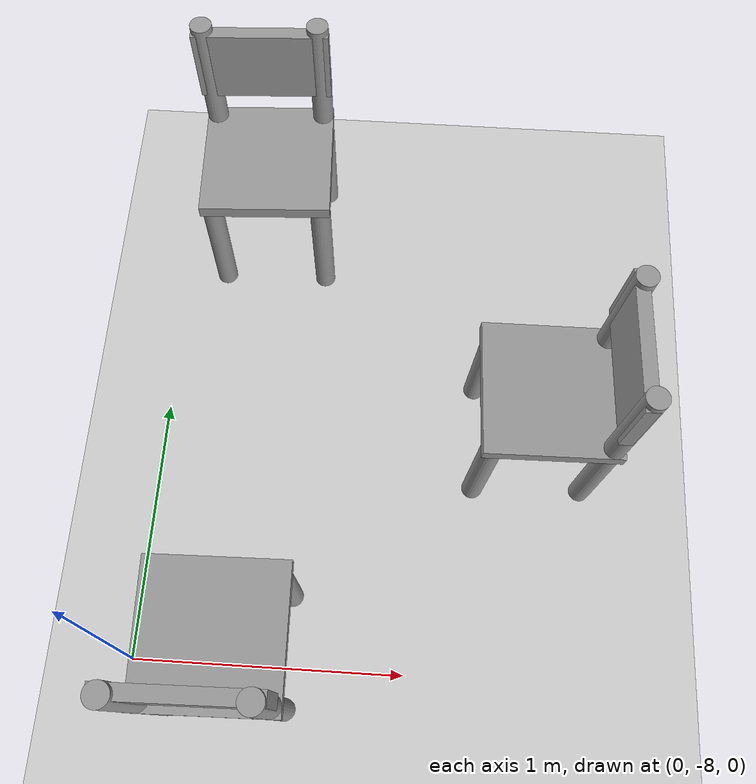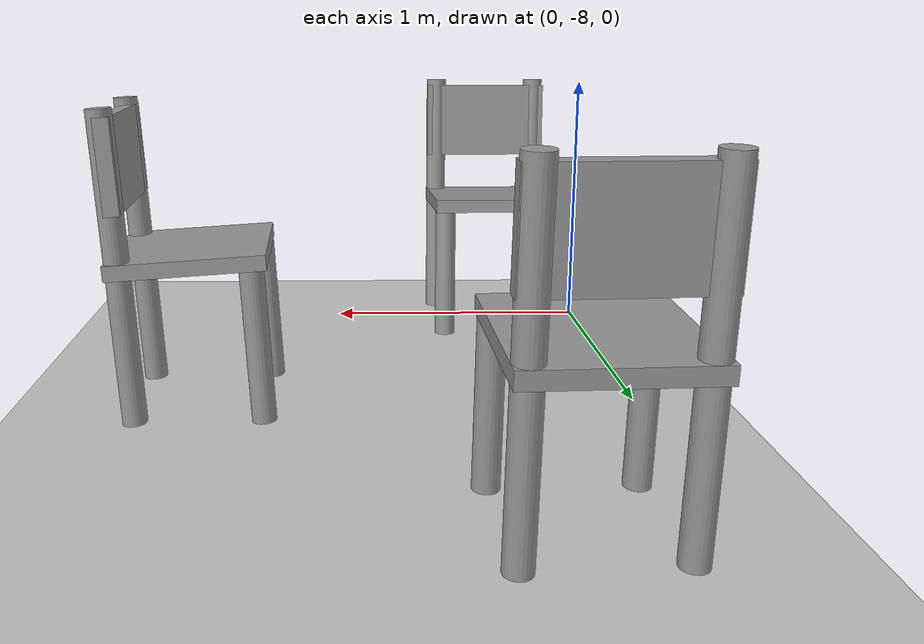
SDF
<sdf version="1.6">
 <world name="default">
  <model name="ground_plane">
   <static>1</static>
   <link name="link">
    <collision name="collision">
     <geometry><plane><normal>0 0 1</normal><size>100 100</size></plane></geometry>
     <surface><friction><ode><mu>100</mu><mu2>50</mu2></ode></friction></surface>
    </collision>
    <visual name="visual">
     <cast_shadows>0</cast_shadows>
     <geometry><plane><normal>0 0 1</normal><size>100 100</size></plane></geometry>
     <material>
      <script><uri>file://media/materials/scripts/gazebo.material</uri><name>Gazebo/Grey</name></script>
     </material>
    </visual>
   </link>
  </model>
  <model name="chair_clone">
   <link name="link_2">
    <pose>0.235 -0.21 -0.2375 0 -0 0</pose>
    <inertial>
     <mass>1</mass>
     <inertia><ixx>0.145833</ixx><ixy>0</ixy><ixz>0</ixz><iyy>0.145833</iyy><iyz>0</iyz><izz>0.125</izz></inertia>
    </inertial>
    <visual name="visual">
     <geometry><cylinder><radius>0.04</radius><length>0.5</length></cylinder></geometry>
     <material>
      <lighting>1</lighting>
      <script><uri>file://media/materials/scripts/gazebo.material</uri><name>Gazebo/Grey</name></script>
      <shader type="pixel"><normal_map>__default__</normal_map></shader>
      <ambient>0.3 0.3 0.3 1</ambient>
      <diffuse>0.7 0.7 0.7 1</diffuse>
      <specular>0.01 0.01 0.01 1</specular>
      <emissive>0 0 0 1</emissive>
     </material>
    </visual>
    <collision name="collision">
     <geometry><cylinder><radius>0.04</radius><length>0.5</length></cylinder></geometry>
     <surface>
      <friction>
       <ode><mu>1</mu><mu2>1</mu2><fdir1>0 0 0</fdir1><slip1>0</slip1><slip2>0</slip2></ode>
       <torsional>
        <coefficient>1</coefficient>
        <patch_radius>0</patch_radius>
        <surface_radius>0</surface_radius>
        <use_patch_radius>1</use_patch_radius>
        <ode><slip>0</slip></ode>
       </torsional>
      </friction>
      <bounce><restitution_coefficient>0</restitution_coefficient><threshold>1e+06</threshold></bounce>
      <contact>
       <collide_without_contact>0</collide_without_contact>
       <collide_without_contact_bitmask>1</collide_without_contact_bitmask>
       <collide_bitmask>1</collide_bitmask>
       <ode>
        <soft_cfm>0</soft_cfm>
        <soft_erp>0.2</soft_erp>
        <kp>1e+13</kp>
        <kd>1</kd>
        <max_vel>0.01</max_vel>
        <min_depth>0</min_depth>
       </ode>
       <bullet>
        <split_impulse>1</split_impulse>
        <split_impulse_penetration_threshold>-0.01</split_impulse_penetration_threshold>
        <soft_cfm>0</soft_cfm>
        <soft_erp>0.2</soft_erp>
        <kp>1e+13</kp>
        <kd>1</kd>
       </bullet>
      </contact>
     </surface>
    </collision>
   </link>
   <link name="link_2_clone">
    <pose>0.245 0.21 -0.2375 0 -0 0</pose>
    <inertial>
     <mass>1</mass>
     <inertia><ixx>0.145833</ixx><ixy>0</ixy><ixz>0</ixz><iyy>0.145833</iyy><iyz>0</iyz><izz>0.125</izz></inertia>
    </inertial>
    <visual name="visual">
     <geometry><cylinder><radius>0.04</radius><length>0.5</length></cylinder></geometry>
     <material>
      <lighting>1</lighting>
      <script><uri>file://media/materials/scripts/gazebo.material</uri><name>Gazebo/Grey</name></script>
      <shader type="pixel"><normal_map>__default__</normal_map></shader>
      <ambient>0.3 0.3 0.3 1</ambient>
      <diffuse>0.7 0.7 0.7 1</diffuse>
      <specular>0.01 0.01 0.01 1</specular>
      <emissive>0 0 0 1</emissive>
     </material>
    </visual>
    <collision name="collision">
     <geometry><cylinder><radius>0.04</radius><length>0.5</length></cylinder></geometry>
     <surface>
      <friction>
       <ode><mu>1</mu><mu2>1</mu2><fdir1>0 0 0</fdir1><slip1>0</slip1><slip2>0</slip2></ode>
       <torsional>
        <coefficient>1</coefficient>
        <patch_radius>0</patch_radius>
        <surface_radius>0</surface_radius>
        <use_patch_radius>1</use_patch_radius>
        <ode><slip>0</slip></ode>
       </torsional>
      </friction>
      <bounce><restitution_coefficient>0</restitution_coefficient><threshold>1e+06</threshold></bounce>
      <contact>
       <collide_without_contact>0</collide_without_contact>
       <collide_without_contact_bitmask>1</collide_without_contact_bitmask>
       <collide_bitmask>1</collide_bitmask>
       <ode>
        <soft_cfm>0</soft_cfm>
        <soft_erp>0.2</soft_erp>
        <kp>1e+13</kp>
        <kd>1</kd>
        <max_vel>0.01</max_vel>
        <min_depth>0</min_depth>
       </ode>
       <bullet>
        <split_impulse>1</split_impulse>
        <split_impulse_penetration_threshold>-0.01</split_impulse_penetration_threshold>
        <soft_cfm>0</soft_cfm>
        <soft_erp>0.2</soft_erp>
        <kp>1e+13</kp>
        <kd>1</kd>
       </bullet>
      </contact>
     </surface>
    </collision>
   </link>
   <link name="link_2_clone_1">
    <pose>-0.175 -0.21 0.0375 0 -0 0</pose>
    <inertial>
     <mass>1</mass>
     <inertia><ixx>0.145833</ixx><ixy>0</ixy><ixz>0</ixz><iyy>0.145833</iyy><iyz>0</iyz><izz>0.125</izz></inertia>
    </inertial>
    <visual name="visual">
     <geometry><cylinder><radius>0.04</radius><length>1</length></cylinder></geometry>
     <material>
      <lighting>1</lighting>
      <script><uri>file://media/materials/scripts/gazebo.material</uri><name>Gazebo/Grey</name></script>
      <shader type="pixel"><normal_map>__default__</normal_map></shader>
      <ambient>0.3 0.3 0.3 1</ambient>
      <diffuse>0.7 0.7 0.7 1</diffuse>
      <specular>0.01 0.01 0.01 1</specular>
      <emissive>0 0 0 1</emissive>
     </material>
    </visual>
    <collision name="collision">
     <geometry><cylinder><radius>0.04</radius><length>1</length></cylinder></geometry>
     <surface>
      <friction>
       <ode><mu>1</mu><mu2>1</mu2><fdir1>0 0 0</fdir1><slip1>0</slip1><slip2>0</slip2></ode>
       <torsional>
        <coefficient>1</coefficient>
        <patch_radius>0</patch_radius>
        <surface_radius>0</surface_radius>
        <use_patch_radius>1</use_patch_radius>
        <ode><slip>0</slip></ode>
       </torsional>
      </friction>
      <bounce><restitution_coefficient>0</restitution_coefficient><threshold>1e+06</threshold></bounce>
      <contact>
       <collide_without_contact>0</collide_without_contact>
       <collide_without_contact_bitmask>1</collide_without_contact_bitmask>
       <collide_bitmask>1</collide_bitmask>
       <ode>
        <soft_cfm>0</soft_cfm>
        <soft_erp>0.2</soft_erp>
        <kp>1e+13</kp>
        <kd>1</kd>
        <max_vel>0.01</max_vel>
        <min_depth>0</min_depth>
       </ode>
       <bullet>
        <split_impulse>1</split_impulse>
        <split_impulse_penetration_threshold>-0.01</split_impulse_penetration_threshold>
        <soft_cfm>0</soft_cfm>
        <soft_erp>0.2</soft_erp>
        <kp>1e+13</kp>
        <kd>1</kd>
       </bullet>
      </contact>
     </surface>
    </collision>
   </link>
   <link name="link_2_clone_1_clone">
    <pose>-0.175 0.21 0.0375 0 -0 0</pose>
    <inertial>
     <mass>1</mass>
     <inertia><ixx>0.145833</ixx><ixy>0</ixy><ixz>0</ixz><iyy>0.145833</iyy><iyz>0</iyz><izz>0.125</izz></inertia>
    </inertial>
    <visual name="visual">
     <geometry><cylinder><radius>0.04</radius><length>1</length></cylinder></geometry>
     <material>
      <lighting>1</lighting>
      <script><uri>file://media/materials/scripts/gazebo.material</uri><name>Gazebo/Grey</name></script>
      <shader type="pixel"><normal_map>__default__</normal_map></shader>
      <ambient>0.3 0.3 0.3 1</ambient>
      <diffuse>0.7 0.7 0.7 1</diffuse>
      <specular>0.01 0.01 0.01 1</specular>
      <emissive>0 0 0 1</emissive>
     </material>
    </visual>
    <collision name="collision">
     <geometry><cylinder><radius>0.04</radius><length>1</length></cylinder></geometry>
     <surface>
      <friction>
       <ode><mu>1</mu><mu2>1</mu2><fdir1>0 0 0</fdir1><slip1>0</slip1><slip2>0</slip2></ode>
       <torsional>
        <coefficient>1</coefficient>
        <patch_radius>0</patch_radius>
        <surface_radius>0</surface_radius>
        <use_patch_radius>1</use_patch_radius>
        <ode><slip>0</slip></ode>
       </torsional>
      </friction>
      <bounce><restitution_coefficient>0</restitution_coefficient><threshold>1e+06</threshold></bounce>
      <contact>
       <collide_without_contact>0</collide_without_contact>
       <collide_without_contact_bitmask>1</collide_without_contact_bitmask>
       <collide_bitmask>1</collide_bitmask>
       <ode>
        <soft_cfm>0</soft_cfm>
        <soft_erp>0.2</soft_erp>
        <kp>1e+13</kp>
        <kd>1</kd>
        <max_vel>0.01</max_vel>
        <min_depth>0</min_depth>
       </ode>
       <bullet>
        <split_impulse>1</split_impulse>
        <split_impulse_penetration_threshold>-0.01</split_impulse_penetration_threshold>
        <soft_cfm>0</soft_cfm>
        <soft_erp>0.2</soft_erp>
        <kp>1e+13</kp>
        <kd>1</kd>
       </bullet>
      </contact>
     </surface>
    </collision>
   </link>
   <link name="link_3">
    <pose>0.035 -0 0.0375 0 -0 0</pose>
    <inertial>
     <mass>1</mass>
     <inertia>
      <ixx>0.166667</ixx>
      <ixy>0</ixy>
      <ixz>0</ixz>
      <iyy>0.166667</iyy>
      <iyz>0</iyz>
      <izz>0.166667</izz>
     </inertia>
    </inertial>
    <visual name="visual">
     <geometry><box><size>0.5 0.5 0.05</size></box></geometry>
     <material>
      <lighting>1</lighting>
      <script><uri>file://media/materials/scripts/gazebo.material</uri><name>Gazebo/Grey</name></script>
      <shader type="pixel"><normal_map>__default__</normal_map></shader>
      <ambient>0.3 0.3 0.3 1</ambient>
      <diffuse>0.7 0.7 0.7 1</diffuse>
      <specular>0.01 0.01 0.01 1</specular>
      <emissive>0 0 0 1</emissive>
     </material>
    </visual>
    <collision name="collision">
     <geometry><box><size>0.5 0.5 0.05</size></box></geometry>
     <surface>
      <friction>
       <ode><mu>1</mu><mu2>1</mu2><fdir1>0 0 0</fdir1><slip1>0</slip1><slip2>0</slip2></ode>
       <torsional>
        <coefficient>1</coefficient>
        <patch_radius>0</patch_radius>
        <surface_radius>0</surface_radius>
        <use_patch_radius>1</use_patch_radius>
        <ode><slip>0</slip></ode>
       </torsional>
      </friction>
      <bounce><restitution_coefficient>0</restitution_coefficient><threshold>1e+06</threshold></bounce>
      <contact>
       <collide_without_contact>0</collide_without_contact>
       <collide_without_contact_bitmask>1</collide_without_contact_bitmask>
       <collide_bitmask>1</collide_bitmask>
       <ode>
        <soft_cfm>0</soft_cfm>
        <soft_erp>0.2</soft_erp>
        <kp>1e+13</kp>
        <kd>1</kd>
        <max_vel>0.01</max_vel>
        <min_depth>0</min_depth>
       </ode>
       <bullet>
        <split_impulse>1</split_impulse>
        <split_impulse_penetration_threshold>-0.01</split_impulse_penetration_threshold>
        <soft_cfm>0</soft_cfm>
        <soft_erp>0.2</soft_erp>
        <kp>1e+13</kp>
        <kd>1</kd>
       </bullet>
      </contact>
     </surface>
    </collision>
   </link>
   <link name="link_4">
    <pose>-0.165 -0 0.3625 0 -0 0</pose>
    <inertial>
     <mass>1</mass>
     <inertia>
      <ixx>0.166667</ixx>
      <ixy>0</ixy>
      <ixz>0</ixz>
      <iyy>0.166667</iyy>
      <iyz>0</iyz>
      <izz>0.166667</izz>
     </inertia>
    </inertial>
    <visual name="visual">
     <geometry><box><size>0.05 0.5 0.3</size></box></geometry>
     <material>
      <lighting>1</lighting>
      <script><uri>file://media/materials/scripts/gazebo.material</uri><name>Gazebo/Grey</name></script>
      <shader type="pixel"><normal_map>__default__</normal_map></shader>
      <ambient>0.3 0.3 0.3 1</ambient>
      <diffuse>0.7 0.7 0.7 1</diffuse>
      <specular>0.01 0.01 0.01 1</specular>
      <emissive>0 0 0 1</emissive>
     </material>
    </visual>
    <collision name="collision">
     <geometry><box><size>0.05 0.5 0.3</size></box></geometry>
     <surface>
      <friction>
       <ode><mu>1</mu><mu2>1</mu2><fdir1>0 0 0</fdir1><slip1>0</slip1><slip2>0</slip2></ode>
       <torsional>
        <coefficient>1</coefficient>
        <patch_radius>0</patch_radius>
        <surface_radius>0</surface_radius>
        <use_patch_radius>1</use_patch_radius>
        <ode><slip>0</slip></ode>
       </torsional>
      </friction>
      <bounce><restitution_coefficient>0</restitution_coefficient><threshold>1e+06</threshold></bounce>
      <contact>
       <collide_without_contact>0</collide_without_contact>
       <collide_without_contact_bitmask>1</collide_without_contact_bitmask>
       <collide_bitmask>1</collide_bitmask>
       <ode>
        <soft_cfm>0</soft_cfm>
        <soft_erp>0.2</soft_erp>
        <kp>1e+13</kp>
        <kd>1</kd>
        <max_vel>0.01</max_vel>
        <min_depth>0</min_depth>
       </ode>
       <bullet>
        <split_impulse>1</split_impulse>
        <split_impulse_penetration_threshold>-0.01</split_impulse_penetration_threshold>
        <soft_cfm>0</soft_cfm>
        <soft_erp>0.2</soft_erp>
        <kp>1e+13</kp>
        <kd>1</kd>
       </bullet>
      </contact>
     </surface>
    </collision>
   </link>
   <joint name="link_3_JOINT_10" type="fixed">
    <parent>link_3</parent>
    <child>link_2_clone_1_clone</child>
    <physics>
     <ode><limit><cfm>0</cfm><erp>0.2</erp></limit><suspension><cfm>0</cfm><erp>0.2</erp></suspension></ode>
    </physics>
   </joint>
   <joint name="link_3_JOINT_11" type="fixed">
    <parent>link_3</parent>
    <child>link_2_clone_1</child>
    <physics>
     <ode><limit><cfm>0</cfm><erp>0.2</erp></limit><suspension><cfm>0</cfm><erp>0.2</erp></suspension></ode>
    </physics>
   </joint>
   <joint name="link_3_JOINT_12" type="fixed">
    <parent>link_3</parent>
    <child>link_2</child>
    <physics>
     <ode><limit><cfm>0</cfm><erp>0.2</erp></limit><suspension><cfm>0</cfm><erp>0.2</erp></suspension></ode>
    </physics>
   </joint>
   <joint name="link_3_JOINT_14" type="fixed">
    <parent>link_3</parent>
    <child>link_4</child>
    <physics>
     <ode><limit><cfm>0</cfm><erp>0.2</erp></limit><suspension><cfm>0</cfm><erp>0.2</erp></suspension></ode>
    </physics>
   </joint>
   <joint name="link_3_JOINT_9" type="fixed">
    <parent>link_3</parent>
    <child>link_2_clone</child>
    <physics>
     <ode><limit><cfm>0</cfm><erp>0.2</erp></limit><suspension><cfm>0</cfm><erp>0.2</erp></suspension></ode>
    </physics>
   </joint>
   <static>0</static>
   <pose>0.358791 -6.10277 0.474727 1e-06 -0.060896 -1.52252</pose>
  </model>
  <model name="chair_clone_2">
   <link name="link_2">
    <pose>0.235 -0.21 -0.2375 0 -0 0</pose>
    <inertial>
     <mass>1</mass>
     <inertia><ixx>0.145833</ixx><ixy>0</ixy><ixz>0</ixz><iyy>0.145833</iyy><iyz>0</iyz><izz>0.125</izz></inertia>
    </inertial>
    <visual name="visual">
     <geometry><cylinder><radius>0.04</radius><length>0.5</length></cylinder></geometry>
     <material>
      <lighting>1</lighting>
      <script><uri>file://media/materials/scripts/gazebo.material</uri><name>Gazebo/Grey</name></script>
      <shader type="pixel"><normal_map>__default__</normal_map></shader>
      <ambient>0.3 0.3 0.3 1</ambient>
      <diffuse>0.7 0.7 0.7 1</diffuse>
      <specular>0.01 0.01 0.01 1</specular>
      <emissive>0 0 0 1</emissive>
     </material>
    </visual>
    <collision name="collision">
     <geometry><cylinder><radius>0.04</radius><length>0.5</length></cylinder></geometry>
     <surface>
      <friction>
       <ode><mu>1</mu><mu2>1</mu2><fdir1>0 0 0</fdir1><slip1>0</slip1><slip2>0</slip2></ode>
       <torsional>
        <coefficient>1</coefficient>
        <patch_radius>0</patch_radius>
        <surface_radius>0</surface_radius>
        <use_patch_radius>1</use_patch_radius>
        <ode><slip>0</slip></ode>
       </torsional>
      </friction>
      <bounce><restitution_coefficient>0</restitution_coefficient><threshold>1e+06</threshold></bounce>
      <contact>
       <collide_without_contact>0</collide_without_contact>
       <collide_without_contact_bitmask>1</collide_without_contact_bitmask>
       <collide_bitmask>1</collide_bitmask>
       <ode>
        <soft_cfm>0</soft_cfm>
        <soft_erp>0.2</soft_erp>
        <kp>1e+13</kp>
        <kd>1</kd>
        <max_vel>0.01</max_vel>
        <min_depth>0</min_depth>
       </ode>
       <bullet>
        <split_impulse>1</split_impulse>
        <split_impulse_penetration_threshold>-0.01</split_impulse_penetration_threshold>
        <soft_cfm>0</soft_cfm>
        <soft_erp>0.2</soft_erp>
        <kp>1e+13</kp>
        <kd>1</kd>
       </bullet>
      </contact>
     </surface>
    </collision>
   </link>
   <link name="link_2_clone">
    <pose>0.245 0.21 -0.2375 0 -0 0</pose>
    <inertial>
     <mass>1</mass>
     <inertia><ixx>0.145833</ixx><ixy>0</ixy><ixz>0</ixz><iyy>0.145833</iyy><iyz>0</iyz><izz>0.125</izz></inertia>
    </inertial>
    <visual name="visual">
     <geometry><cylinder><radius>0.04</radius><length>0.5</length></cylinder></geometry>
     <material>
      <lighting>1</lighting>
      <script><uri>file://media/materials/scripts/gazebo.material</uri><name>Gazebo/Grey</name></script>
      <shader type="pixel"><normal_map>__default__</normal_map></shader>
      <ambient>0.3 0.3 0.3 1</ambient>
      <diffuse>0.7 0.7 0.7 1</diffuse>
      <specular>0.01 0.01 0.01 1</specular>
      <emissive>0 0 0 1</emissive>
     </material>
    </visual>
    <collision name="collision">
     <geometry><cylinder><radius>0.04</radius><length>0.5</length></cylinder></geometry>
     <surface>
      <friction>
       <ode><mu>1</mu><mu2>1</mu2><fdir1>0 0 0</fdir1><slip1>0</slip1><slip2>0</slip2></ode>
       <torsional>
        <coefficient>1</coefficient>
        <patch_radius>0</patch_radius>
        <surface_radius>0</surface_radius>
        <use_patch_radius>1</use_patch_radius>
        <ode><slip>0</slip></ode>
       </torsional>
      </friction>
      <bounce><restitution_coefficient>0</restitution_coefficient><threshold>1e+06</threshold></bounce>
      <contact>
       <collide_without_contact>0</collide_without_contact>
       <collide_without_contact_bitmask>1</collide_without_contact_bitmask>
       <collide_bitmask>1</collide_bitmask>
       <ode>
        <soft_cfm>0</soft_cfm>
        <soft_erp>0.2</soft_erp>
        <kp>1e+13</kp>
        <kd>1</kd>
        <max_vel>0.01</max_vel>
        <min_depth>0</min_depth>
       </ode>
       <bullet>
        <split_impulse>1</split_impulse>
        <split_impulse_penetration_threshold>-0.01</split_impulse_penetration_threshold>
        <soft_cfm>0</soft_cfm>
        <soft_erp>0.2</soft_erp>
        <kp>1e+13</kp>
        <kd>1</kd>
       </bullet>
      </contact>
     </surface>
    </collision>
   </link>
   <link name="link_2_clone_1">
    <pose>-0.175 -0.21 0.0375 0 -0 0</pose>
    <inertial>
     <mass>1</mass>
     <inertia><ixx>0.145833</ixx><ixy>0</ixy><ixz>0</ixz><iyy>0.145833</iyy><iyz>0</iyz><izz>0.125</izz></inertia>
    </inertial>
    <visual name="visual">
     <geometry><cylinder><radius>0.04</radius><length>1</length></cylinder></geometry>
     <material>
      <lighting>1</lighting>
      <script><uri>file://media/materials/scripts/gazebo.material</uri><name>Gazebo/Grey</name></script>
      <shader type="pixel"><normal_map>__default__</normal_map></shader>
      <ambient>0.3 0.3 0.3 1</ambient>
      <diffuse>0.7 0.7 0.7 1</diffuse>
      <specular>0.01 0.01 0.01 1</specular>
      <emissive>0 0 0 1</emissive>
     </material>
    </visual>
    <collision name="collision">
     <geometry><cylinder><radius>0.04</radius><length>1</length></cylinder></geometry>
     <surface>
      <friction>
       <ode><mu>1</mu><mu2>1</mu2><fdir1>0 0 0</fdir1><slip1>0</slip1><slip2>0</slip2></ode>
       <torsional>
        <coefficient>1</coefficient>
        <patch_radius>0</patch_radius>
        <surface_radius>0</surface_radius>
        <use_patch_radius>1</use_patch_radius>
        <ode><slip>0</slip></ode>
       </torsional>
      </friction>
      <bounce><restitution_coefficient>0</restitution_coefficient><threshold>1e+06</threshold></bounce>
      <contact>
       <collide_without_contact>0</collide_without_contact>
       <collide_without_contact_bitmask>1</collide_without_contact_bitmask>
       <collide_bitmask>1</collide_bitmask>
       <ode>
        <soft_cfm>0</soft_cfm>
        <soft_erp>0.2</soft_erp>
        <kp>1e+13</kp>
        <kd>1</kd>
        <max_vel>0.01</max_vel>
        <min_depth>0</min_depth>
       </ode>
       <bullet>
        <split_impulse>1</split_impulse>
        <split_impulse_penetration_threshold>-0.01</split_impulse_penetration_threshold>
        <soft_cfm>0</soft_cfm>
        <soft_erp>0.2</soft_erp>
        <kp>1e+13</kp>
        <kd>1</kd>
       </bullet>
      </contact>
     </surface>
    </collision>
   </link>
   <link name="link_2_clone_1_clone">
    <pose>-0.175 0.21 0.0375 0 -0 0</pose>
    <inertial>
     <mass>1</mass>
     <inertia><ixx>0.145833</ixx><ixy>0</ixy><ixz>0</ixz><iyy>0.145833</iyy><iyz>0</iyz><izz>0.125</izz></inertia>
    </inertial>
    <visual name="visual">
     <geometry><cylinder><radius>0.04</radius><length>1</length></cylinder></geometry>
     <material>
      <lighting>1</lighting>
      <script><uri>file://media/materials/scripts/gazebo.material</uri><name>Gazebo/Grey</name></script>
      <shader type="pixel"><normal_map>__default__</normal_map></shader>
      <ambient>0.3 0.3 0.3 1</ambient>
      <diffuse>0.7 0.7 0.7 1</diffuse>
      <specular>0.01 0.01 0.01 1</specular>
      <emissive>0 0 0 1</emissive>
     </material>
    </visual>
    <collision name="collision">
     <geometry><cylinder><radius>0.04</radius><length>1</length></cylinder></geometry>
     <surface>
      <friction>
       <ode><mu>1</mu><mu2>1</mu2><fdir1>0 0 0</fdir1><slip1>0</slip1><slip2>0</slip2></ode>
       <torsional>
        <coefficient>1</coefficient>
        <patch_radius>0</patch_radius>
        <surface_radius>0</surface_radius>
        <use_patch_radius>1</use_patch_radius>
        <ode><slip>0</slip></ode>
       </torsional>
      </friction>
      <bounce><restitution_coefficient>0</restitution_coefficient><threshold>1e+06</threshold></bounce>
      <contact>
       <collide_without_contact>0</collide_without_contact>
       <collide_without_contact_bitmask>1</collide_without_contact_bitmask>
       <collide_bitmask>1</collide_bitmask>
       <ode>
        <soft_cfm>0</soft_cfm>
        <soft_erp>0.2</soft_erp>
        <kp>1e+13</kp>
        <kd>1</kd>
        <max_vel>0.01</max_vel>
        <min_depth>0</min_depth>
       </ode>
       <bullet>
        <split_impulse>1</split_impulse>
        <split_impulse_penetration_threshold>-0.01</split_impulse_penetration_threshold>
        <soft_cfm>0</soft_cfm>
        <soft_erp>0.2</soft_erp>
        <kp>1e+13</kp>
        <kd>1</kd>
       </bullet>
      </contact>
     </surface>
    </collision>
   </link>
   <link name="link_3">
    <pose>0.035 -0 0.0375 0 -0 0</pose>
    <inertial>
     <mass>1</mass>
     <inertia>
      <ixx>0.166667</ixx>
      <ixy>0</ixy>
      <ixz>0</ixz>
      <iyy>0.166667</iyy>
      <iyz>0</iyz>
      <izz>0.166667</izz>
     </inertia>
    </inertial>
    <visual name="visual">
     <geometry><box><size>0.5 0.5 0.05</size></box></geometry>
     <material>
      <lighting>1</lighting>
      <script><uri>file://media/materials/scripts/gazebo.material</uri><name>Gazebo/Grey</name></script>
      <shader type="pixel"><normal_map>__default__</normal_map></shader>
      <ambient>0.3 0.3 0.3 1</ambient>
      <diffuse>0.7 0.7 0.7 1</diffuse>
      <specular>0.01 0.01 0.01 1</specular>
      <emissive>0 0 0 1</emissive>
     </material>
    </visual>
    <collision name="collision">
     <geometry><box><size>0.5 0.5 0.05</size></box></geometry>
     <surface>
      <friction>
       <ode><mu>1</mu><mu2>1</mu2><fdir1>0 0 0</fdir1><slip1>0</slip1><slip2>0</slip2></ode>
       <torsional>
        <coefficient>1</coefficient>
        <patch_radius>0</patch_radius>
        <surface_radius>0</surface_radius>
        <use_patch_radius>1</use_patch_radius>
        <ode><slip>0</slip></ode>
       </torsional>
      </friction>
      <bounce><restitution_coefficient>0</restitution_coefficient><threshold>1e+06</threshold></bounce>
      <contact>
       <collide_without_contact>0</collide_without_contact>
       <collide_without_contact_bitmask>1</collide_without_contact_bitmask>
       <collide_bitmask>1</collide_bitmask>
       <ode>
        <soft_cfm>0</soft_cfm>
        <soft_erp>0.2</soft_erp>
        <kp>1e+13</kp>
        <kd>1</kd>
        <max_vel>0.01</max_vel>
        <min_depth>0</min_depth>
       </ode>
       <bullet>
        <split_impulse>1</split_impulse>
        <split_impulse_penetration_threshold>-0.01</split_impulse_penetration_threshold>
        <soft_cfm>0</soft_cfm>
        <soft_erp>0.2</soft_erp>
        <kp>1e+13</kp>
        <kd>1</kd>
       </bullet>
      </contact>
     </surface>
    </collision>
   </link>
   <link name="link_4">
    <pose>-0.165 -0 0.3625 0 -0 0</pose>
    <inertial>
     <mass>1</mass>
     <inertia>
      <ixx>0.166667</ixx>
      <ixy>0</ixy>
      <ixz>0</ixz>
      <iyy>0.166667</iyy>
      <iyz>0</iyz>
      <izz>0.166667</izz>
     </inertia>
    </inertial>
    <visual name="visual">
     <geometry><box><size>0.05 0.5 0.3</size></box></geometry>
     <material>
      <lighting>1</lighting>
      <script><uri>file://media/materials/scripts/gazebo.material</uri><name>Gazebo/Grey</name></script>
      <shader type="pixel"><normal_map>__default__</normal_map></shader>
      <ambient>0.3 0.3 0.3 1</ambient>
      <diffuse>0.7 0.7 0.7 1</diffuse>
      <specular>0.01 0.01 0.01 1</specular>
      <emissive>0 0 0 1</emissive>
     </material>
    </visual>
    <collision name="collision">
     <geometry><box><size>0.05 0.5 0.3</size></box></geometry>
     <surface>
      <friction>
       <ode><mu>1</mu><mu2>1</mu2><fdir1>0 0 0</fdir1><slip1>0</slip1><slip2>0</slip2></ode>
       <torsional>
        <coefficient>1</coefficient>
        <patch_radius>0</patch_radius>
        <surface_radius>0</surface_radius>
        <use_patch_radius>1</use_patch_radius>
        <ode><slip>0</slip></ode>
       </torsional>
      </friction>
      <bounce><restitution_coefficient>0</restitution_coefficient><threshold>1e+06</threshold></bounce>
      <contact>
       <collide_without_contact>0</collide_without_contact>
       <collide_without_contact_bitmask>1</collide_without_contact_bitmask>
       <collide_bitmask>1</collide_bitmask>
       <ode>
        <soft_cfm>0</soft_cfm>
        <soft_erp>0.2</soft_erp>
        <kp>1e+13</kp>
        <kd>1</kd>
        <max_vel>0.01</max_vel>
        <min_depth>0</min_depth>
       </ode>
       <bullet>
        <split_impulse>1</split_impulse>
        <split_impulse_penetration_threshold>-0.01</split_impulse_penetration_threshold>
        <soft_cfm>0</soft_cfm>
        <soft_erp>0.2</soft_erp>
        <kp>1e+13</kp>
        <kd>1</kd>
       </bullet>
      </contact>
     </surface>
    </collision>
   </link>
   <joint name="link_3_JOINT_10" type="fixed">
    <parent>link_3</parent>
    <child>link_2_clone_1_clone</child>
    <physics>
     <ode><limit><cfm>0</cfm><erp>0.2</erp></limit><suspension><cfm>0</cfm><erp>0.2</erp></suspension></ode>
    </physics>
   </joint>
   <joint name="link_3_JOINT_11" type="fixed">
    <parent>link_3</parent>
    <child>link_2_clone_1</child>
    <physics>
     <ode><limit><cfm>0</cfm><erp>0.2</erp></limit><suspension><cfm>0</cfm><erp>0.2</erp></suspension></ode>
    </physics>
   </joint>
   <joint name="link_3_JOINT_12" type="fixed">
    <parent>link_3</parent>
    <child>link_2</child>
    <physics>
     <ode><limit><cfm>0</cfm><erp>0.2</erp></limit><suspension><cfm>0</cfm><erp>0.2</erp></suspension></ode>
    </physics>
   </joint>
   <joint name="link_3_JOINT_14" type="fixed">
    <parent>link_3</parent>
    <child>link_4</child>
    <physics>
     <ode><limit><cfm>0</cfm><erp>0.2</erp></limit><suspension><cfm>0</cfm><erp>0.2</erp></suspension></ode>
    </physics>
   </joint>
   <joint name="link_3_JOINT_9" type="fixed">
    <parent>link_3</parent>
    <child>link_2_clone</child>
    <physics>
     <ode><limit><cfm>0</cfm><erp>0.2</erp></limit><suspension><cfm>0</cfm><erp>0.2</erp></suspension></ode>
    </physics>
   </joint>
   <static>0</static>
   <pose>1.50034 -7.04982 0.474727 -8e-06 -0.060896 -3.1085</pose>
  </model>
  <model name="chair_clone_3">
   <link name="link_2">
    <pose>0.235 -0.21 -0.2375 0 -0 0</pose>
    <inertial>
     <mass>1</mass>
     <inertia><ixx>0.145833</ixx><ixy>0</ixy><ixz>0</ixz><iyy>0.145833</iyy><iyz>0</iyz><izz>0.125</izz></inertia>
    </inertial>
    <visual name="visual">
     <geometry><cylinder><radius>0.04</radius><length>0.5</length></cylinder></geometry>
     <material>
      <lighting>1</lighting>
      <script><uri>file://media/materials/scripts/gazebo.material</uri><name>Gazebo/Grey</name></script>
      <shader type="pixel"><normal_map>__default__</normal_map></shader>
      <ambient>0.3 0.3 0.3 1</ambient>
      <diffuse>0.7 0.7 0.7 1</diffuse>
      <specular>0.01 0.01 0.01 1</specular>
      <emissive>0 0 0 1</emissive>
     </material>
    </visual>
    <collision name="collision">
     <geometry><cylinder><radius>0.04</radius><length>0.5</length></cylinder></geometry>
     <surface>
      <friction>
       <ode><mu>1</mu><mu2>1</mu2><fdir1>0 0 0</fdir1><slip1>0</slip1><slip2>0</slip2></ode>
       <torsional>
        <coefficient>1</coefficient>
        <patch_radius>0</patch_radius>
        <surface_radius>0</surface_radius>
        <use_patch_radius>1</use_patch_radius>
        <ode><slip>0</slip></ode>
       </torsional>
      </friction>
      <bounce><restitution_coefficient>0</restitution_coefficient><threshold>1e+06</threshold></bounce>
      <contact>
       <collide_without_contact>0</collide_without_contact>
       <collide_without_contact_bitmask>1</collide_without_contact_bitmask>
       <collide_bitmask>1</collide_bitmask>
       <ode>
        <soft_cfm>0</soft_cfm>
        <soft_erp>0.2</soft_erp>
        <kp>1e+13</kp>
        <kd>1</kd>
        <max_vel>0.01</max_vel>
        <min_depth>0</min_depth>
       </ode>
       <bullet>
        <split_impulse>1</split_impulse>
        <split_impulse_penetration_threshold>-0.01</split_impulse_penetration_threshold>
        <soft_cfm>0</soft_cfm>
        <soft_erp>0.2</soft_erp>
        <kp>1e+13</kp>
        <kd>1</kd>
       </bullet>
      </contact>
     </surface>
    </collision>
   </link>
   <link name="link_2_clone">
    <pose>0.245 0.21 -0.2375 0 -0 0</pose>
    <inertial>
     <mass>1</mass>
     <inertia><ixx>0.145833</ixx><ixy>0</ixy><ixz>0</ixz><iyy>0.145833</iyy><iyz>0</iyz><izz>0.125</izz></inertia>
    </inertial>
    <visual name="visual">
     <geometry><cylinder><radius>0.04</radius><length>0.5</length></cylinder></geometry>
     <material>
      <lighting>1</lighting>
      <script><uri>file://media/materials/scripts/gazebo.material</uri><name>Gazebo/Grey</name></script>
      <shader type="pixel"><normal_map>__default__</normal_map></shader>
      <ambient>0.3 0.3 0.3 1</ambient>
      <diffuse>0.7 0.7 0.7 1</diffuse>
      <specular>0.01 0.01 0.01 1</specular>
      <emissive>0 0 0 1</emissive>
     </material>
    </visual>
    <collision name="collision">
     <geometry><cylinder><radius>0.04</radius><length>0.5</length></cylinder></geometry>
     <surface>
      <friction>
       <ode><mu>1</mu><mu2>1</mu2><fdir1>0 0 0</fdir1><slip1>0</slip1><slip2>0</slip2></ode>
       <torsional>
        <coefficient>1</coefficient>
        <patch_radius>0</patch_radius>
        <surface_radius>0</surface_radius>
        <use_patch_radius>1</use_patch_radius>
        <ode><slip>0</slip></ode>
       </torsional>
      </friction>
      <bounce><restitution_coefficient>0</restitution_coefficient><threshold>1e+06</threshold></bounce>
      <contact>
       <collide_without_contact>0</collide_without_contact>
       <collide_without_contact_bitmask>1</collide_without_contact_bitmask>
       <collide_bitmask>1</collide_bitmask>
       <ode>
        <soft_cfm>0</soft_cfm>
        <soft_erp>0.2</soft_erp>
        <kp>1e+13</kp>
        <kd>1</kd>
        <max_vel>0.01</max_vel>
        <min_depth>0</min_depth>
       </ode>
       <bullet>
        <split_impulse>1</split_impulse>
        <split_impulse_penetration_threshold>-0.01</split_impulse_penetration_threshold>
        <soft_cfm>0</soft_cfm>
        <soft_erp>0.2</soft_erp>
        <kp>1e+13</kp>
        <kd>1</kd>
       </bullet>
      </contact>
     </surface>
    </collision>
   </link>
   <link name="link_2_clone_1">
    <pose>-0.175 -0.21 0.0375 0 -0 0</pose>
    <inertial>
     <mass>1</mass>
     <inertia><ixx>0.145833</ixx><ixy>0</ixy><ixz>0</ixz><iyy>0.145833</iyy><iyz>0</iyz><izz>0.125</izz></inertia>
    </inertial>
    <visual name="visual">
     <geometry><cylinder><radius>0.04</radius><length>1</length></cylinder></geometry>
     <material>
      <lighting>1</lighting>
      <script><uri>file://media/materials/scripts/gazebo.material</uri><name>Gazebo/Grey</name></script>
      <shader type="pixel"><normal_map>__default__</normal_map></shader>
      <ambient>0.3 0.3 0.3 1</ambient>
      <diffuse>0.7 0.7 0.7 1</diffuse>
      <specular>0.01 0.01 0.01 1</specular>
      <emissive>0 0 0 1</emissive>
     </material>
    </visual>
    <collision name="collision">
     <geometry><cylinder><radius>0.04</radius><length>1</length></cylinder></geometry>
     <surface>
      <friction>
       <ode><mu>1</mu><mu2>1</mu2><fdir1>0 0 0</fdir1><slip1>0</slip1><slip2>0</slip2></ode>
       <torsional>
        <coefficient>1</coefficient>
        <patch_radius>0</patch_radius>
        <surface_radius>0</surface_radius>
        <use_patch_radius>1</use_patch_radius>
        <ode><slip>0</slip></ode>
       </torsional>
      </friction>
      <bounce><restitution_coefficient>0</restitution_coefficient><threshold>1e+06</threshold></bounce>
      <contact>
       <collide_without_contact>0</collide_without_contact>
       <collide_without_contact_bitmask>1</collide_without_contact_bitmask>
       <collide_bitmask>1</collide_bitmask>
       <ode>
        <soft_cfm>0</soft_cfm>
        <soft_erp>0.2</soft_erp>
        <kp>1e+13</kp>
        <kd>1</kd>
        <max_vel>0.01</max_vel>
        <min_depth>0</min_depth>
       </ode>
       <bullet>
        <split_impulse>1</split_impulse>
        <split_impulse_penetration_threshold>-0.01</split_impulse_penetration_threshold>
        <soft_cfm>0</soft_cfm>
        <soft_erp>0.2</soft_erp>
        <kp>1e+13</kp>
        <kd>1</kd>
       </bullet>
      </contact>
     </surface>
    </collision>
   </link>
   <link name="link_2_clone_1_clone">
    <pose>-0.175 0.21 0.0375 0 -0 0</pose>
    <inertial>
     <mass>1</mass>
     <inertia><ixx>0.145833</ixx><ixy>0</ixy><ixz>0</ixz><iyy>0.145833</iyy><iyz>0</iyz><izz>0.125</izz></inertia>
    </inertial>
    <visual name="visual">
     <geometry><cylinder><radius>0.04</radius><length>1</length></cylinder></geometry>
     <material>
      <lighting>1</lighting>
      <script><uri>file://media/materials/scripts/gazebo.material</uri><name>Gazebo/Grey</name></script>
      <shader type="pixel"><normal_map>__default__</normal_map></shader>
      <ambient>0.3 0.3 0.3 1</ambient>
      <diffuse>0.7 0.7 0.7 1</diffuse>
      <specular>0.01 0.01 0.01 1</specular>
      <emissive>0 0 0 1</emissive>
     </material>
    </visual>
    <collision name="collision">
     <geometry><cylinder><radius>0.04</radius><length>1</length></cylinder></geometry>
     <surface>
      <friction>
       <ode><mu>1</mu><mu2>1</mu2><fdir1>0 0 0</fdir1><slip1>0</slip1><slip2>0</slip2></ode>
       <torsional>
        <coefficient>1</coefficient>
        <patch_radius>0</patch_radius>
        <surface_radius>0</surface_radius>
        <use_patch_radius>1</use_patch_radius>
        <ode><slip>0</slip></ode>
       </torsional>
      </friction>
      <bounce><restitution_coefficient>0</restitution_coefficient><threshold>1e+06</threshold></bounce>
      <contact>
       <collide_without_contact>0</collide_without_contact>
       <collide_without_contact_bitmask>1</collide_without_contact_bitmask>
       <collide_bitmask>1</collide_bitmask>
       <ode>
        <soft_cfm>0</soft_cfm>
        <soft_erp>0.2</soft_erp>
        <kp>1e+13</kp>
        <kd>1</kd>
        <max_vel>0.01</max_vel>
        <min_depth>0</min_depth>
       </ode>
       <bullet>
        <split_impulse>1</split_impulse>
        <split_impulse_penetration_threshold>-0.01</split_impulse_penetration_threshold>
        <soft_cfm>0</soft_cfm>
        <soft_erp>0.2</soft_erp>
        <kp>1e+13</kp>
        <kd>1</kd>
       </bullet>
      </contact>
     </surface>
    </collision>
   </link>
   <link name="link_3">
    <pose>0.035 -0 0.0375 0 -0 0</pose>
    <inertial>
     <mass>1</mass>
     <inertia>
      <ixx>0.166667</ixx>
      <ixy>0</ixy>
      <ixz>0</ixz>
      <iyy>0.166667</iyy>
      <iyz>0</iyz>
      <izz>0.166667</izz>
     </inertia>
    </inertial>
    <visual name="visual">
     <geometry><box><size>0.5 0.5 0.05</size></box></geometry>
     <material>
      <lighting>1</lighting>
      <script><uri>file://media/materials/scripts/gazebo.material</uri><name>Gazebo/Grey</name></script>
      <shader type="pixel"><normal_map>__default__</normal_map></shader>
      <ambient>0.3 0.3 0.3 1</ambient>
      <diffuse>0.7 0.7 0.7 1</diffuse>
      <specular>0.01 0.01 0.01 1</specular>
      <emissive>0 0 0 1</emissive>
     </material>
    </visual>
    <collision name="collision">
     <geometry><box><size>0.5 0.5 0.05</size></box></geometry>
     <surface>
      <friction>
       <ode><mu>1</mu><mu2>1</mu2><fdir1>0 0 0</fdir1><slip1>0</slip1><slip2>0</slip2></ode>
       <torsional>
        <coefficient>1</coefficient>
        <patch_radius>0</patch_radius>
        <surface_radius>0</surface_radius>
        <use_patch_radius>1</use_patch_radius>
        <ode><slip>0</slip></ode>
       </torsional>
      </friction>
      <bounce><restitution_coefficient>0</restitution_coefficient><threshold>1e+06</threshold></bounce>
      <contact>
       <collide_without_contact>0</collide_without_contact>
       <collide_without_contact_bitmask>1</collide_without_contact_bitmask>
       <collide_bitmask>1</collide_bitmask>
       <ode>
        <soft_cfm>0</soft_cfm>
        <soft_erp>0.2</soft_erp>
        <kp>1e+13</kp>
        <kd>1</kd>
        <max_vel>0.01</max_vel>
        <min_depth>0</min_depth>
       </ode>
       <bullet>
        <split_impulse>1</split_impulse>
        <split_impulse_penetration_threshold>-0.01</split_impulse_penetration_threshold>
        <soft_cfm>0</soft_cfm>
        <soft_erp>0.2</soft_erp>
        <kp>1e+13</kp>
        <kd>1</kd>
       </bullet>
      </contact>
     </surface>
    </collision>
   </link>
   <link name="link_4">
    <pose>-0.165 -0 0.3625 0 -0 0</pose>
    <inertial>
     <mass>1</mass>
     <inertia>
      <ixx>0.166667</ixx>
      <ixy>0</ixy>
      <ixz>0</ixz>
      <iyy>0.166667</iyy>
      <iyz>0</iyz>
      <izz>0.166667</izz>
     </inertia>
    </inertial>
    <visual name="visual">
     <geometry><box><size>0.05 0.5 0.3</size></box></geometry>
     <material>
      <lighting>1</lighting>
      <script><uri>file://media/materials/scripts/gazebo.material</uri><name>Gazebo/Grey</name></script>
      <shader type="pixel"><normal_map>__default__</normal_map></shader>
      <ambient>0.3 0.3 0.3 1</ambient>
      <diffuse>0.7 0.7 0.7 1</diffuse>
      <specular>0.01 0.01 0.01 1</specular>
      <emissive>0 0 0 1</emissive>
     </material>
    </visual>
    <collision name="collision">
     <geometry><box><size>0.05 0.5 0.3</size></box></geometry>
     <surface>
      <friction>
       <ode><mu>1</mu><mu2>1</mu2><fdir1>0 0 0</fdir1><slip1>0</slip1><slip2>0</slip2></ode>
       <torsional>
        <coefficient>1</coefficient>
        <patch_radius>0</patch_radius>
        <surface_radius>0</surface_radius>
        <use_patch_radius>1</use_patch_radius>
        <ode><slip>0</slip></ode>
       </torsional>
      </friction>
      <bounce><restitution_coefficient>0</restitution_coefficient><threshold>1e+06</threshold></bounce>
      <contact>
       <collide_without_contact>0</collide_without_contact>
       <collide_without_contact_bitmask>1</collide_without_contact_bitmask>
       <collide_bitmask>1</collide_bitmask>
       <ode>
        <soft_cfm>0</soft_cfm>
        <soft_erp>0.2</soft_erp>
        <kp>1e+13</kp>
        <kd>1</kd>
        <max_vel>0.01</max_vel>
        <min_depth>0</min_depth>
       </ode>
       <bullet>
        <split_impulse>1</split_impulse>
        <split_impulse_penetration_threshold>-0.01</split_impulse_penetration_threshold>
        <soft_cfm>0</soft_cfm>
        <soft_erp>0.2</soft_erp>
        <kp>1e+13</kp>
        <kd>1</kd>
       </bullet>
      </contact>
     </surface>
    </collision>
   </link>
   <joint name="link_3_JOINT_10" type="fixed">
    <parent>link_3</parent>
    <child>link_2_clone_1_clone</child>
    <physics>
     <ode><limit><cfm>0</cfm><erp>0.2</erp></limit><suspension><cfm>0</cfm><erp>0.2</erp></suspension></ode>
    </physics>
   </joint>
   <joint name="link_3_JOINT_11" type="fixed">
    <parent>link_3</parent>
    <child>link_2_clone_1</child>
    <physics>
     <ode><limit><cfm>0</cfm><erp>0.2</erp></limit><suspension><cfm>0</cfm><erp>0.2</erp></suspension></ode>
    </physics>
   </joint>
   <joint name="link_3_JOINT_12" type="fixed">
    <parent>link_3</parent>
    <child>link_2</child>
    <physics>
     <ode><limit><cfm>0</cfm><erp>0.2</erp></limit><suspension><cfm>0</cfm><erp>0.2</erp></suspension></ode>
    </physics>
   </joint>
   <joint name="link_3_JOINT_14" type="fixed">
    <parent>link_3</parent>
    <child>link_4</child>
    <physics>
     <ode><limit><cfm>0</cfm><erp>0.2</erp></limit><suspension><cfm>0</cfm><erp>0.2</erp></suspension></ode>
    </physics>
   </joint>
   <joint name="link_3_JOINT_9" type="fixed">
    <parent>link_3</parent>
    <child>link_2_clone</child>
    <physics>
     <ode><limit><cfm>0</cfm><erp>0.2</erp></limit><suspension><cfm>0</cfm><erp>0.2</erp></suspension></ode>
    </physics>
   </joint>
   <static>0</static>
   <pose>0.365353 -8.00153 0.474728 -7e-06 -0.060891 1.58841</pose>
  </model>
 </world>
</sdf>
